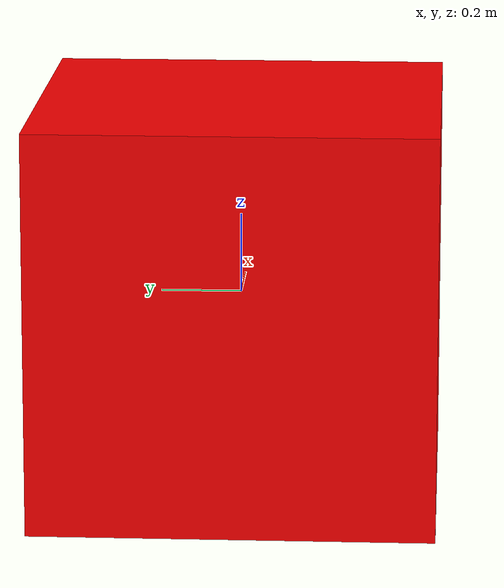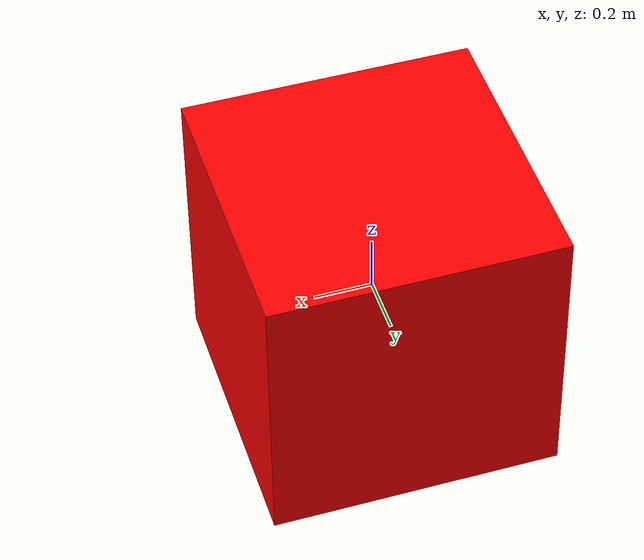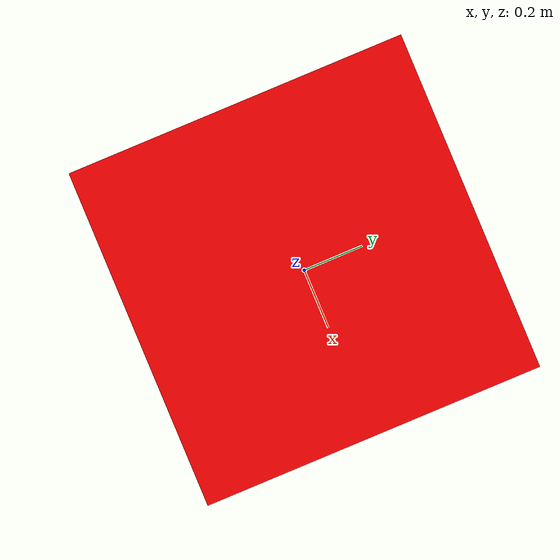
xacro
<?xml version ="1.0"?>

<robot
  xmlns:xacro="http://www.ros.org/wiki/xacro"
  name="my_car">

    <link name="base_link">
        <inertial>
            <origin xyz="0.0 0.0 0.0" rpy="0.0 0.0 0.0"/>
            <mass value="0.0"/>
            <inertia ixx="0.0" ixy="0.0" ixz="0.0" iyy="0.0" iyz="0.0" izz="0.0"/>
        </inertial>
        <visual name="">
            <origin xyz="0.0 0.0 0.0" rpy="0.0 0.0 0.0"/>
            <geometry>
                <box size="0.0 0.0 0.0"/>
            </geometry>
            <material name="">
                <color rgba="1.0 0.0 0.0 1.0"/>
                <texture filename=""/>
            </material>
        </visual>
        <collision>
            <origin xyz="0.0 0.0 0.0" rpy="0.0 0.0 0.0"/>
            <geometry>
                <box size="0.0 0.0 0.0"/>
            </geometry>
        </collision>
    </link>
    <link name="first_link">
        <inertial>
            <origin xyz="0.0 0.0 0.0" rpy="0.0 0.0 0.0"/>
            <mass value="0.0"/>
            <inertia ixx="0.0" ixy="0.0" ixz="0.0" iyy="0.0" iyz="0.0" izz="0.0"/>
        </inertial>
        <visual name="">
            <origin xyz="0.0 0.0 0.0" rpy="0.0 0.0 0.0"/>
            <geometry>
                <box size="1.0 1.0 1.0"/>
            </geometry>
            <material name="">
                <color rgba="1.0 0.0 0.0 1.0"/>
                <texture filename=""/>
            </material>
        </visual>
        <collision>
            <origin xyz="0.0 0.0 0.0" rpy="0.0 0.0 0.0"/>
            <geometry>
                <box size="1.0 1.0 1.0"/>
            </geometry>
        </collision>
    </link>
    <joint name="first_j" type="fixed">
        <origin xyz="0.0 0.0 0.0" rpy="0.0 0.0 0.0"/>
        <parent link="base_link"/>
        <child link="first_link"/>
        <axis xyz="0.0 0.0 0.0"/>
        <limit lower="0.0" upper="0.0" effort="0.0" velocity="0.0"/>
    </joint>

</robot>
